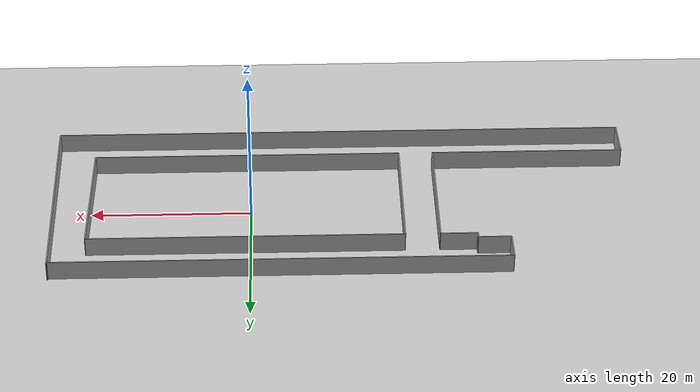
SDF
<sdf version="1.4">
 <world name="default">
  <light name="sun" type="directional">
   <pose>0 0 10 0 -0 0</pose>
   <diffuse>0.8 0.8 0.8 1</diffuse>
   <specular>0.2 0.2 0.2 1</specular>
   <attenuation>
    <range>1000</range>
    <constant>0.9</constant>
    <linear>0.01</linear>
    <quadratic>0.001</quadratic>
   </attenuation>
   <direction>-0.5 0.1 -0.9</direction>
  </light>
  <model name="ground_plane">
   <static>1</static>
   <link name="link">
    <collision name="collision">
     <geometry><plane><normal>0 0 1</normal><size>100 100</size></plane></geometry>
     <surface><friction><ode><mu>100</mu><mu2>50</mu2></ode></friction></surface>
    </collision>
    <visual name="visual">
     <cast_shadows>0</cast_shadows>
     <geometry><plane><normal>0 0 1</normal><size>100 100</size></plane></geometry>
     <material>
      <script><uri>file://media/materials/scripts/gazebo.material</uri><name>Gazebo/Grey</name></script>
     </material>
    </visual>
   </link>
  </model>
  <physics default="0" name="default_physics" type="ode">
   <max_step_size>0.005</max_step_size>
   <real_time_factor>1</real_time_factor>
   <real_time_update_rate>100</real_time_update_rate>
   <gravity>0 0 -9.8</gravity>
  </physics>
  <scene><ambient>0.4 0.4 0.4 1</ambient><background>0.7 0.7 0.7 1</background><shadows>1</shadows></scene>
  <spherical_coordinates>
   <surface_model>EARTH_WGS84</surface_model>
   <latitude_deg>0</latitude_deg>
   <longitude_deg>0</longitude_deg>
   <elevation>0</elevation>
   <heading_deg>0</heading_deg>
  </spherical_coordinates>
  <model name="Wean4">
   <pose>-5 0 0 0 0 0</pose>
   <static>1</static>
   <link name="Wall_0">
    <collision name="Wall_0_Collision">
     <geometry><box><size>39.189 0.15 2.5</size></box></geometry>
     <pose>0 0 1.25 0 -0 0</pose>
    </collision>
    <visual name="Wall_0_Visual">
     <pose>0 0 1.25 0 -0 0</pose>
     <geometry><box><size>39.189 0.15 2.5</size></box></geometry>
     <material>
      <script><uri>file://media/materials/scripts/gazebo.material</uri><name>Gazebo/Grey</name></script>
      <ambient>1 1 1 1</ambient>
     </material>
    </visual>
    <pose>5.6255 8.108 0 0 0 0.0</pose>
   </link>
   <link name="Wall_1">
    <collision name="Wall_1_Collision">
     <geometry><box><size>17.299107173493088 0.15 2.5</size></box></geometry>
     <pose>0 0 1.25 0 -0 0</pose>
    </collision>
    <visual name="Wall_1_Visual">
     <pose>0 0 1.25 0 -0 0</pose>
     <geometry><box><size>17.299107173493088 0.15 2.5</size></box></geometry>
     <material>
      <script><uri>file://media/materials/scripts/gazebo.material</uri><name>Gazebo/Grey</name></script>
      <ambient>1 1 1 1</ambient>
     </material>
    </visual>
    <pose>25.084999999999997 -0.5404999999999998 0 0 0 1.555187951139076</pose>
   </link>
   <link name="Wall_2">
    <collision name="Wall_2_Collision">
     <geometry><box><size>38.919 0.15 2.5</size></box></geometry>
     <pose>0 0 1.25 0 -0 0</pose>
    </collision>
    <visual name="Wall_2_Visual">
     <pose>0 0 1.25 0 -0 0</pose>
     <geometry><box><size>38.919 0.15 2.5</size></box></geometry>
     <material>
      <script><uri>file://media/materials/scripts/gazebo.material</uri><name>Gazebo/Grey</name></script>
      <ambient>1 1 1 1</ambient>
     </material>
    </visual>
    <pose>5.4905 -9.189 0 0 0 0.0</pose>
   </link>
   <link name="Wall_3">
    <collision name="Wall_3_Collision">
     <geometry><box><size>17.297 0.15 2.5</size></box></geometry>
     <pose>0 0 1.25 0 -0 0</pose>
    </collision>
    <visual name="Wall_3_Visual">
     <pose>0 0 1.25 0 -0 0</pose>
     <geometry><box><size>17.297 0.15 2.5</size></box></geometry>
     <material>
      <script><uri>file://media/materials/scripts/gazebo.material</uri><name>Gazebo/Grey</name></script>
      <ambient>1 1 1 1</ambient>
     </material>
    </visual>
    <pose>-13.969000000000001 -0.5404999999999998 0 0 0 1.5707963267948966</pose>
   </link>
   <link name="Wall_4">
    <collision name="Wall_4_Collision">
     <geometry><box><size>4.0539999999999985 0.15 2.5</size></box></geometry>
     <pose>0 0 1.25 0 -0 0</pose>
    </collision>
    <visual name="Wall_4_Visual">
     <pose>0 0 1.25 0 -0 0</pose>
     <geometry><box><size>4.0539999999999985 0.15 2.5</size></box></geometry>
     <material>
      <script><uri>file://media/materials/scripts/gazebo.material</uri><name>Gazebo/Grey</name></script>
      <ambient>1 1 1 1</ambient>
     </material>
    </visual>
    <pose>-24.915000000000003 8.919 0 0 0 0.0</pose>
   </link>
   <link name="Wall_5">
    <collision name="Wall_5_Collision">
     <geometry><box><size>0.8109999999999999 0.15 2.5</size></box></geometry>
     <pose>0 0 1.25 0 -0 0</pose>
    </collision>
    <visual name="Wall_5_Visual">
     <pose>0 0 1.25 0 -0 0</pose>
     <geometry><box><size>0.8109999999999999 0.15 2.5</size></box></geometry>
     <material>
      <script><uri>file://media/materials/scripts/gazebo.material</uri><name>Gazebo/Grey</name></script>
      <ambient>1 1 1 1</ambient>
     </material>
    </visual>
    <pose>-22.888 8.5135 0 0 0 1.5707963267948966</pose>
   </link>
   <link name="Wall_6">
    <collision name="Wall_6_Collision">
     <geometry><box><size>4.595000000000002 0.15 2.5</size></box></geometry>
     <pose>0 0 1.25 0 -0 0</pose>
    </collision>
    <visual name="Wall_6_Visual">
     <pose>0 0 1.25 0 -0 0</pose>
     <geometry><box><size>4.595000000000002 0.15 2.5</size></box></geometry>
     <material>
      <script><uri>file://media/materials/scripts/gazebo.material</uri><name>Gazebo/Grey</name></script>
      <ambient>1 1 1 1</ambient>
     </material>
    </visual>
    <pose>-20.590500000000002 8.108 0 0 0 0.0</pose>
   </link>
   <link name="Wall_7">
    <collision name="Wall_7_Collision">
     <geometry><box><size>17.297 0.15 2.5</size></box></geometry>
     <pose>0 0 1.25 0 -0 0</pose>
    </collision>
    <visual name="Wall_7_Visual">
     <pose>0 0 1.25 0 -0 0</pose>
     <geometry><box><size>17.297 0.15 2.5</size></box></geometry>
     <material>
      <script><uri>file://media/materials/scripts/gazebo.material</uri><name>Gazebo/Grey</name></script>
      <ambient>1 1 1 1</ambient>
     </material>
    </visual>
    <pose>-18.293 -0.5404999999999998 0 0 0 1.5707963267948966</pose>
   </link>
   <link name="Wall_8">
    <collision name="Wall_8_Collision">
     <geometry><box><size>24.325 0.15 2.5</size></box></geometry>
     <pose>0 0 1.25 0 -0 0</pose>
    </collision>
    <visual name="Wall_8_Visual">
     <pose>0 0 1.25 0 -0 0</pose>
     <geometry><box><size>24.325 0.15 2.5</size></box></geometry>
     <material>
      <script><uri>file://media/materials/scripts/gazebo.material</uri><name>Gazebo/Grey</name></script>
      <ambient>1 1 1 1</ambient>
     </material>
    </visual>
    <pose>-30.455499999999997 -9.189 0 0 0 0.0</pose>
   </link>
   <link name="Wall_9">
    <collision name="Wall_9_Collision">
     <geometry><box><size>5.135 0.15 2.5</size></box></geometry>
     <pose>0 0 1.25 0 -0 0</pose>
    </collision>
    <visual name="Wall_9_Visual">
     <pose>0 0 1.25 0 -0 0</pose>
     <geometry><box><size>5.135 0.15 2.5</size></box></geometry>
     <material>
      <script><uri>file://media/materials/scripts/gazebo.material</uri><name>Gazebo/Grey</name></script>
      <ambient>1 1 1 1</ambient>
     </material>
    </visual>
    <pose>-42.617999999999995 -11.756499999999999 0 0 0 1.5707963267948966</pose>
   </link>
   <link name="Wall_10">
    <collision name="Wall_10_Collision">
     <geometry><box><size>72.43299999999999 0.15 2.5</size></box></geometry>
     <pose>0 0 1.25 0 -0 0</pose>
    </collision>
    <visual name="Wall_10_Visual">
     <pose>0 0 1.25 0 -0 0</pose>
     <geometry><box><size>72.43299999999999 0.15 2.5</size></box></geometry>
     <material>
      <script><uri>file://media/materials/scripts/gazebo.material</uri><name>Gazebo/Grey</name></script>
      <ambient>1 1 1 1</ambient>
     </material>
    </visual>
    <pose>-6.4014999999999995 -14.324 0 0 0 0.0</pose>
   </link>
   <link name="Wall_11">
    <collision name="Wall_11_Collision">
     <geometry><box><size>27.29833527891399 0.15 2.5</size></box></geometry>
     <pose>0 0 1.25 0 -0 0</pose>
    </collision>
    <visual name="Wall_11_Visual">
     <pose>0 0 1.25 0 -0 0</pose>
     <geometry><box><size>27.29833527891399 0.15 2.5</size></box></geometry>
     <material>
      <script><uri>file://media/materials/scripts/gazebo.material</uri><name>Gazebo/Grey</name></script>
      <ambient>1 1 1 1</ambient>
     </material>
    </visual>
    <pose>29.679999999999996 -0.6754999999999995 0 0 0 -1.5609054525121142</pose>
   </link>
   <link name="Wall_12">
    <collision name="Wall_12_Collision">
     <geometry><box><size>0.5410000000000004 0.15 2.5</size></box></geometry>
     <pose>0 0 1.25 0 -0 0</pose>
    </collision>
    <visual name="Wall_12_Visual">
     <pose>0 0 1.25 0 -0 0</pose>
     <geometry><box><size>0.5410000000000004 0.15 2.5</size></box></geometry>
     <material>
      <script><uri>file://media/materials/scripts/gazebo.material</uri><name>Gazebo/Grey</name></script>
      <ambient>1 1 1 1</ambient>
     </material>
    </visual>
    <pose>29.544999999999998 12.7025 0 0 0 1.5707963267948966</pose>
   </link>
   <link name="Wall_13">
    <collision name="Wall_13_Collision">
     <geometry><box><size>56.486999999999995 0.15 2.5</size></box></geometry>
     <pose>0 0 1.25 0 -0 0</pose>
    </collision>
    <visual name="Wall_13_Visual">
     <pose>0 0 1.25 0 -0 0</pose>
     <geometry><box><size>56.486999999999995 0.15 2.5</size></box></geometry>
     <material>
      <script><uri>file://media/materials/scripts/gazebo.material</uri><name>Gazebo/Grey</name></script>
      <ambient>1 1 1 1</ambient>
     </material>
    </visual>
    <pose>1.3014999999999999 12.703 0 0 0 0.0</pose>
   </link>
   <link name="Wall_14">
    <collision name="Wall_14_Collision">
     <geometry><box><size>3.783999999999999 0.15 2.5</size></box></geometry>
     <pose>0 0 1.25 0 -0 0</pose>
    </collision>
    <visual name="Wall_14_Visual">
     <pose>0 0 1.25 0 -0 0</pose>
     <geometry><box><size>3.783999999999999 0.15 2.5</size></box></geometry>
     <material>
      <script><uri>file://media/materials/scripts/gazebo.material</uri><name>Gazebo/Grey</name></script>
      <ambient>1 1 1 1</ambient>
     </material>
    </visual>
    <pose>-26.942 10.811 0 0 0 1.5707963267948966</pose>
   </link>
  </model>
  <model name="battery_demo_model">
   <static>false</static>
   <link name="body"><battery name="brass_battery"><voltage>12.592</voltage></battery></link>
   <plugin filename="libbattery_discharge.so" name="battery">
    <ros_node>battery_monitor_client</ros_node>
    <link_name>body</link_name>
    <battery_name>brass_battery</battery_name>
    <constant_coef>12.694</constant_coef>
    <linear_coef>-3.1424</linear_coef>
    <initial_charge>2.5857</initial_charge>
    <capacity>2.5857</capacity>
    <resistance>0.061523</resistance>
    <smooth_current_tau>1.9499</smooth_current_tau>
    <charge_rate>200</charge_rate>
   </plugin>
   <plugin filename="libbattery_consumer.so" name="consumer">
    <ros_node>battery_monitor_client</ros_node>
    <link_name>body</link_name>
    <battery_name>brass_battery</battery_name>
    <power_load>50</power_load>
   </plugin>
   <plugin filename="libconfig_manager.so" name="configuration_manager">
    <config_list_path>/cp1/config_list_true.json</config_list_path>
    <default_config>0</default_config>
    <ros_node>battery_monitor_client</ros_node>
   </plugin>
  </model>
 </world>
</sdf>
